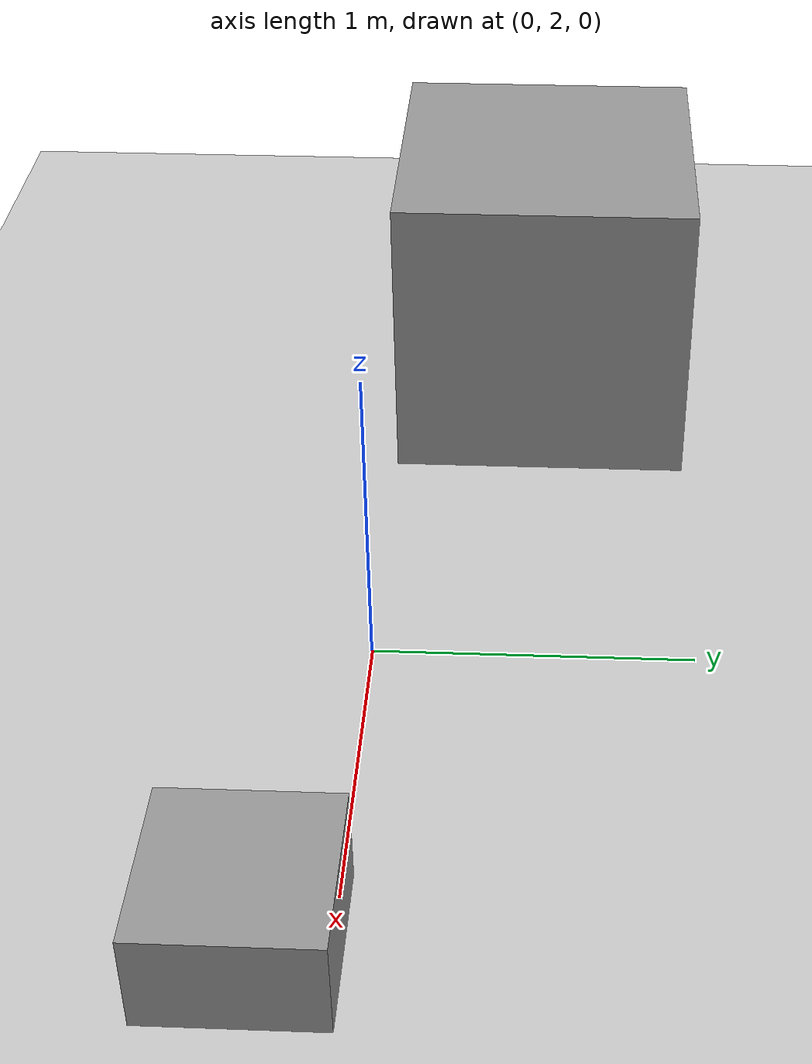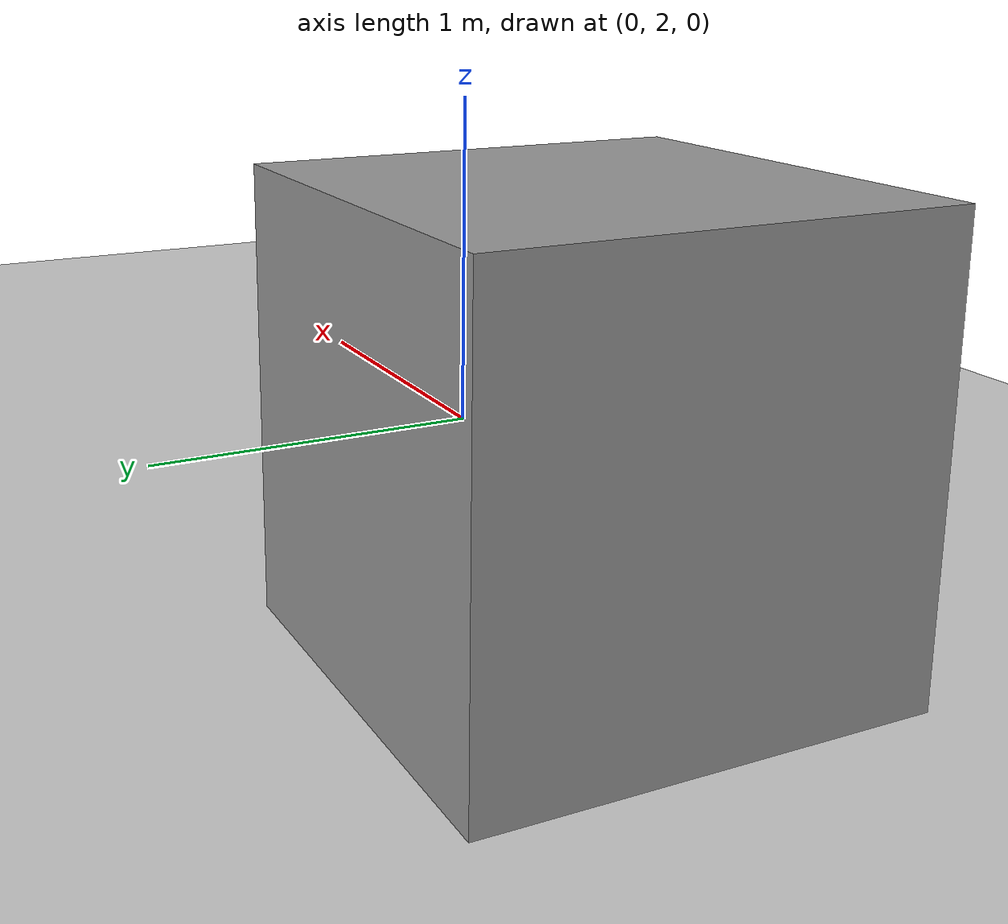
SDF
<?xml version="1.0" ?>
<sdf version="1.5">
  <world name="default">
    <!-- A global light source -->
    <include>
      <uri>model://sun</uri>
    </include>
    <!-- A ground plane -->
    <include>
      <uri>model://ground_plane</uri>
    </include>
    <!-- A unit box -->
    <model name='unit_box_0_0'>
      <pose frame=''>-1.5 2.5 0.5 0 -0 0</pose>
      <link name='link'>
        <inertial>
          <mass>1</mass>
          <inertia>
            <ixx>0.166667</ixx>
            <ixy>0</ixy>
            <ixz>0</ixz>
            <iyy>0.166667</iyy>
            <iyz>0</iyz>
            <izz>0.166667</izz>
          </inertia>
        </inertial>
        <collision name='collision'>
          <geometry>
            <box>
              <size>1 1 1</size>
            </box>
          </geometry>
          <max_contacts>10</max_contacts>
          <surface>
            <contact>
              <ode/>
            </contact>
            <bounce/>
            <friction>
              <torsional>
                <ode/>
              </torsional>
              <ode/>
            </friction>
          </surface>
        </collision>
        <visual name='visual'>
          <geometry>
            <box>
              <size>1 1 1</size>
            </box>
          </geometry>
          <material>
            <script>
              <name>Gazebo/Grey</name>
              <uri>file://media/materials/scripts/gazebo.material</uri>
            </script>
          </material>
        </visual>
        <self_collide>0</self_collide>
        <kinematic>0</kinematic>
        <gravity>1</gravity>
      </link>
    </model>
	<!-- Another unit box to see if lidar actually works-->
    <model name='unit_box_0_1'>
      <pose frame=''>1.3 1.8 0.3 0 -0 0</pose>
      <link name='link'>
        <inertial>
          <mass>1</mass>
          <inertia>
            <ixx>0.166667</ixx>
            <ixy>0</ixy>
            <ixz>0</ixz>
            <iyy>0.166667</iyy>
            <iyz>0</iyz>
            <izz>0.166667</izz>
          </inertia>
        </inertial>
        <collision name='collision'>
          <geometry>
            <box>
              <size>0.5 0.5 0.3</size>
            </box>
          </geometry>
          <max_contacts>10</max_contacts>
          <surface>
            <contact>
              <ode/>
            </contact>
            <bounce/>
            <friction>
              <torsional>
                <ode/>
              </torsional>
              <ode/>
            </friction>
          </surface>
        </collision>
        <visual name='visual'>
          <geometry>
            <box>
              <size>0.5 0.5 0.3</size>
            </box>
          </geometry>
          <material>
            <script>
              <name>Gazebo/Grey</name>
              <uri>file://media/materials/scripts/gazebo.material</uri>
            </script>
          </material>
        </visual>
        <self_collide>0</self_collide>
        <kinematic>0</kinematic>
        <gravity>1</gravity>
      </link>
    </model>
  </world>
</sdf>
